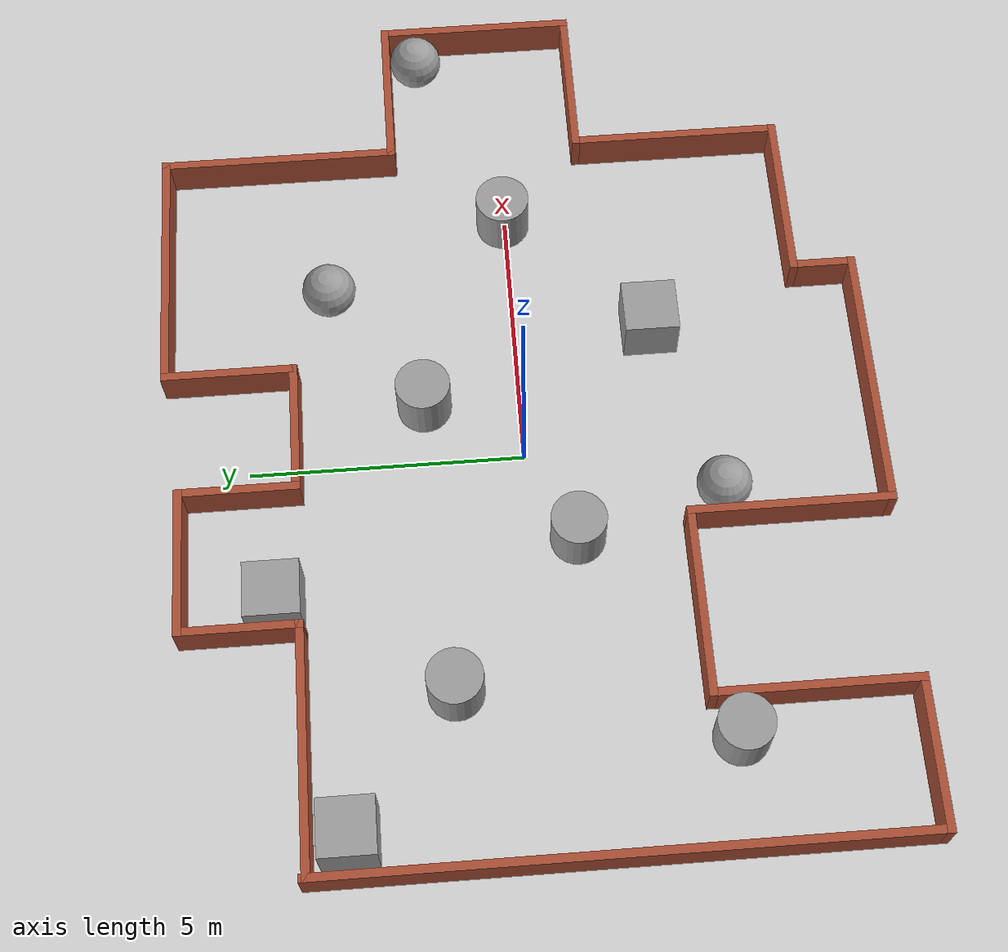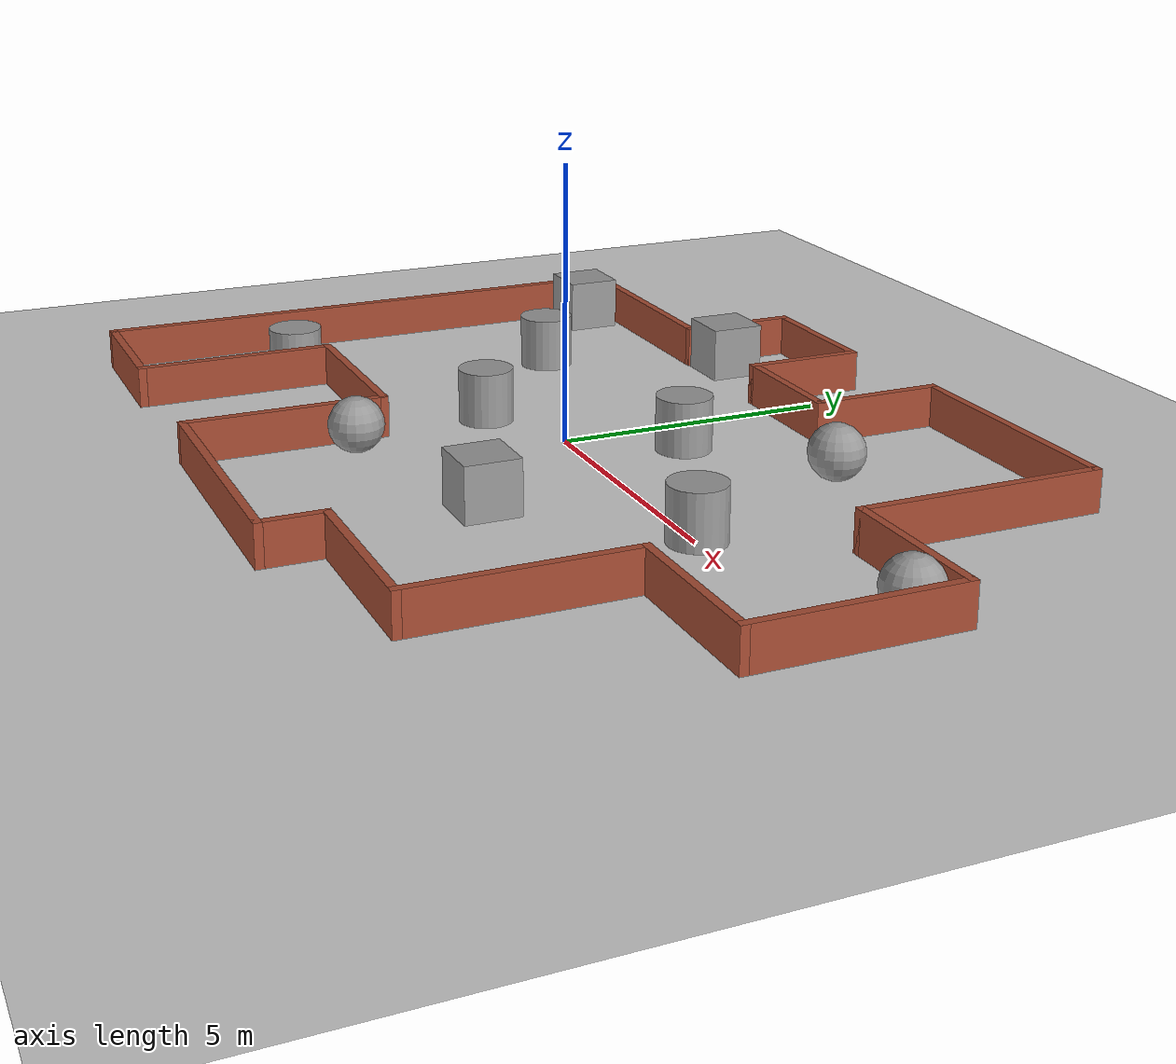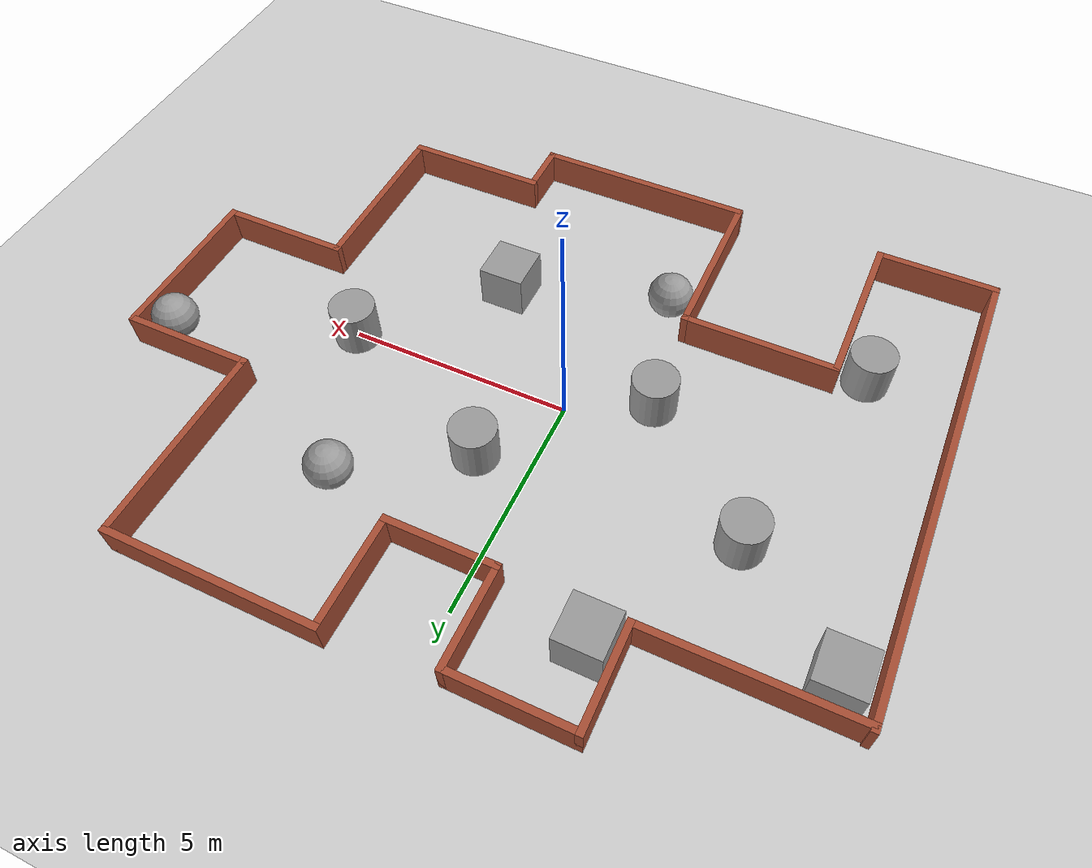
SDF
<sdf version="1.6">
 <world name="default">
  <light name="sun" type="directional">
   <pose>0 0 10 0 -0 0</pose>
   <diffuse>0.8 0.8 0.8 1</diffuse>
   <specular>0.2 0.2 0.2 1</specular>
   <attenuation>
    <range>1000</range>
    <constant>0.9</constant>
    <linear>0.01</linear>
    <quadratic>0.001</quadratic>
   </attenuation>
   <direction>-0.5 0.1 -0.9</direction>
   <spot><inner_angle>0</inner_angle><outer_angle>0</outer_angle><falloff>0</falloff></spot>
  </light>
  <model name="ground_plane">
   <static>1</static>
   <link name="link">
    <collision name="collision">
     <geometry><plane><normal>0 0 1</normal><size>100 100</size></plane></geometry>
     <surface>
      <contact><collide_bitmask>65535</collide_bitmask></contact>
      <friction><ode><mu>100</mu><mu2>50</mu2></ode></friction>
     </surface>
    </collision>
    <visual name="visual">
     <cast_shadows>0</cast_shadows>
     <geometry><plane><normal>0 0 1</normal><size>100 100</size></plane></geometry>
     <material>
      <script><uri>file://media/materials/scripts/gazebo.material</uri><name>Gazebo/Grey</name></script>
     </material>
    </visual>
   </link>
  </model>
  <gravity>0 0 -9.8</gravity>
  <magnetic_field>6e-06 2.3e-05 -4.2e-05</magnetic_field>
  <atmosphere type="adiabatic"/>
  <physics type="ode">
   <max_step_size>0.001</max_step_size>
   <real_time_factor>1</real_time_factor>
   <real_time_update_rate>1000</real_time_update_rate>
  </physics>
  <scene><ambient>0.4 0.4 0.4 1</ambient><background>0.7 0.7 0.7 1</background><shadows>1</shadows></scene>
  <spherical_coordinates>
   <surface_model>EARTH_WGS84</surface_model>
   <latitude_deg>0</latitude_deg>
   <longitude_deg>0</longitude_deg>
   <elevation>0</elevation>
   <heading_deg>0</heading_deg>
  </spherical_coordinates>
  <model name="Untitled">
   <pose>0.856 0.011 0 0 -0 0</pose>
   <link name="Wall_23">
    <collision name="Wall_23_Collision">
     <geometry><box><size>4.5 0.15 0.75</size></box></geometry>
     <pose>0 0 0.375 0 -0 0</pose>
    </collision>
    <visual name="Wall_23_Visual">
     <pose>0 0 0.375 0 -0 0</pose>
     <geometry><box><size>4.5 0.15 0.75</size></box></geometry>
     <material>
      <script><uri>file://media/materials/scripts/gazebo.material</uri><name>Gazebo/Bricks</name></script>
      <ambient>1 1 1 1</ambient>
     </material>
     <meta><layer>0</layer></meta>
    </visual>
    <pose>-6.2 4.1 0 0 -0 0</pose>
   </link>
   <link name="Wall_26">
    <collision name="Wall_26_Collision">
     <geometry><box><size>2.25 0.15 0.75</size></box></geometry>
     <pose>0 0 0.375 0 -0 0</pose>
    </collision>
    <visual name="Wall_26_Visual">
     <pose>0 0 0.375 0 -0 0</pose>
     <geometry><box><size>2.25 0.15 0.75</size></box></geometry>
     <material>
      <script><uri>file://media/materials/scripts/gazebo.material</uri><name>Gazebo/Bricks</name></script>
      <ambient>1 1 1 1</ambient>
     </material>
     <meta><layer>0</layer></meta>
    </visual>
    <pose>-4.025 5.15 0 0 -0 1.5708</pose>
   </link>
   <link name="Wall_27">
    <collision name="Wall_27_Collision">
     <geometry><box><size>2.75 0.15 0.75</size></box></geometry>
     <pose>0 0 0.375 0 -0 0</pose>
    </collision>
    <visual name="Wall_27_Visual">
     <pose>0 0 0.375 0 -0 0</pose>
     <geometry><box><size>2.75 0.15 0.75</size></box></geometry>
     <material>
      <script><uri>file://media/materials/scripts/gazebo.material</uri><name>Gazebo/Bricks</name></script>
      <ambient>1 1 1 1</ambient>
     </material>
     <meta><layer>0</layer></meta>
    </visual>
    <pose>-2.725 6.2 0 0 -0 0</pose>
   </link>
   <link name="Wall_28">
    <collision name="Wall_28_Collision">
     <geometry><box><size>2.25 0.15 0.75</size></box></geometry>
     <pose>0 0 0.375 0 -0 0</pose>
    </collision>
    <visual name="Wall_28_Visual">
     <pose>0 0 0.375 0 -0 0</pose>
     <geometry><box><size>2.25 0.15 0.75</size></box></geometry>
     <material>
      <script><uri>file://media/materials/scripts/gazebo.material</uri><name>Gazebo/Bricks</name></script>
      <ambient>1 1 1 1</ambient>
     </material>
     <meta><layer>0</layer></meta>
    </visual>
    <pose>-1.425 5.15 0 0 -0 -1.5708</pose>
   </link>
   <link name="Wall_29">
    <collision name="Wall_29_Collision">
     <geometry><box><size>2.5 0.15 0.75</size></box></geometry>
     <pose>0 0 0.375 0 -0 0</pose>
    </collision>
    <visual name="Wall_29_Visual">
     <pose>0 0 0.375 0 -0 0</pose>
     <geometry><box><size>2.5 0.15 0.75</size></box></geometry>
     <material>
      <script><uri>file://media/materials/scripts/gazebo.material</uri><name>Gazebo/Bricks</name></script>
      <ambient>1 1 1 1</ambient>
     </material>
     <meta><layer>0</layer></meta>
    </visual>
    <pose>-0.249999 4.1 0 0 -0 0</pose>
   </link>
   <link name="Wall_30">
    <collision name="Wall_30_Collision">
     <geometry><box><size>2.5 0.15 0.75</size></box></geometry>
     <pose>0 0 0.375 0 -0 0</pose>
    </collision>
    <visual name="Wall_30_Visual">
     <pose>0 0 0.375 0 -0 0</pose>
     <geometry><box><size>2.5 0.15 0.75</size></box></geometry>
     <material>
      <script><uri>file://media/materials/scripts/gazebo.material</uri><name>Gazebo/Bricks</name></script>
      <ambient>1 1 1 1</ambient>
     </material>
     <meta><layer>0</layer></meta>
    </visual>
    <pose>0.925001 5.275 0 0 -0 1.5708</pose>
   </link>
   <link name="Wall_31">
    <collision name="Wall_31_Collision">
     <geometry><box><size>4.75 0.15 0.75</size></box></geometry>
     <pose>0 0 0.375 0 -0 0</pose>
    </collision>
    <visual name="Wall_31_Visual">
     <pose>0 0 0.375 0 -0 0</pose>
     <geometry><box><size>4.75 0.15 0.75</size></box></geometry>
     <material>
      <script><uri>file://media/materials/scripts/gazebo.material</uri><name>Gazebo/Bricks</name></script>
      <ambient>1 1 1 1</ambient>
     </material>
     <meta><layer>0</layer></meta>
    </visual>
    <pose>3.225 6.45 0 0 -0 0</pose>
   </link>
   <link name="Wall_32">
    <collision name="Wall_32_Collision">
     <geometry><box><size>4.5 0.15 0.75</size></box></geometry>
     <pose>0 0 0.375 0 -0 0</pose>
    </collision>
    <visual name="Wall_32_Visual">
     <pose>0 0 0.375 0 -0 0</pose>
     <geometry><box><size>4.5 0.15 0.75</size></box></geometry>
     <material>
      <script><uri>file://media/materials/scripts/gazebo.material</uri><name>Gazebo/Bricks</name></script>
      <ambient>1 1 1 1</ambient>
     </material>
     <meta><layer>0</layer></meta>
    </visual>
    <pose>5.525 4.275 0 0 -0 -1.5708</pose>
   </link>
   <link name="Wall_33">
    <collision name="Wall_33_Collision">
     <geometry><box><size>3 0.15 0.75</size></box></geometry>
     <pose>0 0 0.375 0 -0 0</pose>
    </collision>
    <visual name="Wall_33_Visual">
     <pose>0 0 0.375 0 -0 0</pose>
     <geometry><box><size>3 0.15 0.75</size></box></geometry>
     <material>
      <script><uri>file://media/materials/scripts/gazebo.material</uri><name>Gazebo/Bricks</name></script>
      <ambient>1 1 1 1</ambient>
     </material>
     <meta><layer>0</layer></meta>
    </visual>
    <pose>6.95 2.1 0 0 -0 0</pose>
   </link>
   <link name="Wall_34">
    <collision name="Wall_34_Collision">
     <geometry><box><size>3.75 0.15 0.75</size></box></geometry>
     <pose>0 0 0.375 0 -0 0</pose>
    </collision>
    <visual name="Wall_34_Visual">
     <pose>0 0 0.375 0 -0 0</pose>
     <geometry><box><size>3.75 0.15 0.75</size></box></geometry>
     <material>
      <script><uri>file://media/materials/scripts/gazebo.material</uri><name>Gazebo/Bricks</name></script>
      <ambient>1 1 1 1</ambient>
     </material>
     <meta><layer>0</layer></meta>
    </visual>
    <pose>8.375 0.3 0 0 -0 -1.5708</pose>
   </link>
   <link name="Wall_35">
    <collision name="Wall_35_Collision">
     <geometry><box><size>3 0.15 0.75</size></box></geometry>
     <pose>0 0 0.375 0 -0 0</pose>
    </collision>
    <visual name="Wall_35_Visual">
     <pose>0 0 0.375 0 -0 0</pose>
     <geometry><box><size>3 0.15 0.75</size></box></geometry>
     <material>
      <script><uri>file://media/materials/scripts/gazebo.material</uri><name>Gazebo/Bricks</name></script>
      <ambient>1 1 1 1</ambient>
     </material>
     <meta><layer>0</layer></meta>
    </visual>
    <pose>6.95 -1.5 0 0 -0 3.14159</pose>
   </link>
   <link name="Wall_36">
    <collision name="Wall_36_Collision">
     <geometry><box><size>4 0.15 0.75</size></box></geometry>
     <pose>0 0 0.375 0 -0 0</pose>
    </collision>
    <visual name="Wall_36_Visual">
     <pose>0 0 0.375 0 -0 0</pose>
     <geometry><box><size>4 0.15 0.75</size></box></geometry>
     <material>
      <script><uri>file://media/materials/scripts/gazebo.material</uri><name>Gazebo/Bricks</name></script>
      <ambient>1 1 1 1</ambient>
     </material>
     <meta><layer>0</layer></meta>
    </visual>
    <pose>5.525 -3.425 0 0 -0 -1.5708</pose>
   </link>
   <link name="Wall_37">
    <collision name="Wall_37_Collision">
     <geometry><box><size>3.25 0.15 0.75</size></box></geometry>
     <pose>0 0 0.375 0 -0 0</pose>
    </collision>
    <visual name="Wall_37_Visual">
     <pose>0 0 0.375 0 -0 0</pose>
     <geometry><box><size>3.25 0.15 0.75</size></box></geometry>
     <material>
      <script><uri>file://media/materials/scripts/gazebo.material</uri><name>Gazebo/Bricks</name></script>
      <ambient>1 1 1 1</ambient>
     </material>
     <meta><layer>0</layer></meta>
    </visual>
    <pose>3.975 -5.35 0 0 -0 3.14159</pose>
   </link>
   <link name="Wall_38">
    <collision name="Wall_38_Collision">
     <geometry><box><size>1.25 0.15 0.75</size></box></geometry>
     <pose>0 0 0.375 0 -0 0</pose>
    </collision>
    <visual name="Wall_38_Visual">
     <pose>0 0 0.375 0 -0 0</pose>
     <geometry><box><size>1.25 0.15 0.75</size></box></geometry>
     <material>
      <script><uri>file://media/materials/scripts/gazebo.material</uri><name>Gazebo/Bricks</name></script>
      <ambient>1 1 1 1</ambient>
     </material>
     <meta><layer>0</layer></meta>
    </visual>
    <pose>2.425 -5.9 0 0 -0 -1.5708</pose>
   </link>
   <link name="Wall_39">
    <collision name="Wall_39_Collision">
     <geometry><box><size>5 0.15 0.75</size></box></geometry>
     <pose>0 0 0.375 0 -0 0</pose>
    </collision>
    <visual name="Wall_39_Visual">
     <pose>0 0 0.375 0 -0 0</pose>
     <geometry><box><size>5 0.15 0.75</size></box></geometry>
     <material>
      <script><uri>file://media/materials/scripts/gazebo.material</uri><name>Gazebo/Bricks</name></script>
      <ambient>1 1 1 1</ambient>
     </material>
     <meta><layer>0</layer></meta>
    </visual>
    <pose>1e-06 -6.45 0 0 -0 3.14159</pose>
   </link>
   <link name="Wall_40">
    <collision name="Wall_40_Collision">
     <geometry><box><size>3.75 0.15 0.75</size></box></geometry>
     <pose>0 0 0.375 0 -0 0</pose>
    </collision>
    <visual name="Wall_40_Visual">
     <pose>0 0 0.375 0 -0 0</pose>
     <geometry><box><size>3.75 0.15 0.75</size></box></geometry>
     <material>
      <script><uri>file://media/materials/scripts/gazebo.material</uri><name>Gazebo/Bricks</name></script>
      <ambient>1 1 1 1</ambient>
     </material>
     <meta><layer>0</layer></meta>
    </visual>
    <pose>-2.425 -4.65 0 0 -0 1.5708</pose>
   </link>
   <link name="Wall_41">
    <collision name="Wall_41_Collision">
     <geometry><box><size>3.5 0.15 0.75</size></box></geometry>
     <pose>0 0 0.375 0 -0 0</pose>
    </collision>
    <visual name="Wall_41_Visual">
     <pose>0 0 0.375 0 -0 0</pose>
     <geometry><box><size>3.5 0.15 0.75</size></box></geometry>
     <material>
      <script><uri>file://media/materials/scripts/gazebo.material</uri><name>Gazebo/Bricks</name></script>
      <ambient>1 1 1 1</ambient>
     </material>
     <meta><layer>0</layer></meta>
    </visual>
    <pose>-4.1 -2.85 0 0 -0 3.14159</pose>
   </link>
   <link name="Wall_42">
    <collision name="Wall_42_Collision">
     <geometry><box><size>3.75 0.15 0.75</size></box></geometry>
     <pose>0 0 0.375 0 -0 0</pose>
    </collision>
    <visual name="Wall_42_Visual">
     <pose>0 0 0.375 0 -0 0</pose>
     <geometry><box><size>3.75 0.15 0.75</size></box></geometry>
     <material>
      <script><uri>file://media/materials/scripts/gazebo.material</uri><name>Gazebo/Bricks</name></script>
      <ambient>1 1 1 1</ambient>
     </material>
     <meta><layer>0</layer></meta>
    </visual>
    <pose>-5.775 -4.65 0 0 -0 -1.5708</pose>
   </link>
   <link name="Wall_43">
    <collision name="Wall_43_Collision">
     <geometry><box><size>2.75 0.15 0.75</size></box></geometry>
     <pose>0 0 0.375 0 -0 0</pose>
    </collision>
    <visual name="Wall_43_Visual">
     <pose>0 0 0.375 0 -0 0</pose>
     <geometry><box><size>2.75 0.15 0.75</size></box></geometry>
     <material>
      <script><uri>file://media/materials/scripts/gazebo.material</uri><name>Gazebo/Bricks</name></script>
      <ambient>1 1 1 1</ambient>
     </material>
     <meta><layer>0</layer></meta>
    </visual>
    <pose>-7.075 -6.45 0 0 -0 3.14159</pose>
   </link>
   <link name="Wall_44">
    <collision name="Wall_44_Collision">
     <geometry><box><size>10.75 0.15 0.75</size></box></geometry>
     <pose>0 0 0.375 0 -0 0</pose>
    </collision>
    <visual name="Wall_44_Visual">
     <pose>0 0 0.375 0 -0 0</pose>
     <geometry><box><size>10.75 0.15 0.75</size></box></geometry>
     <material>
      <script><uri>file://media/materials/scripts/gazebo.material</uri><name>Gazebo/Bricks</name></script>
      <ambient>1 1 1 1</ambient>
     </material>
     <meta><layer>0</layer></meta>
    </visual>
    <pose>-8.375 -1.15 0 0 -0 1.5708</pose>
   </link>
   <static>1</static>
  </model>
  <model name="unit_box">
   <pose>-2.56252 4.5653 0.499995 0 1e-05 0</pose>
   <link name="link">
    <inertial>
     <mass>1</mass>
     <inertia>
      <ixx>0.166667</ixx>
      <ixy>0</ixy>
      <ixz>0</ixz>
      <iyy>0.166667</iyy>
      <iyz>0</iyz>
      <izz>0.166667</izz>
     </inertia>
    </inertial>
    <collision name="collision"><geometry><box><size>1 1 1</size></box></geometry></collision>
    <visual name="visual">
     <geometry><box><size>1 1 1</size></box></geometry>
     <material>
      <script><name>Gazebo/Grey</name><uri>file://media/materials/scripts/gazebo.material</uri></script>
     </material>
    </visual>
   </link>
  </model>
  <model name="unit_sphere">
   <pose>-0.987672 -3.53038 0.5 -1e-06 0.012849 0</pose>
   <link name="link">
    <inertial>
     <mass>1</mass>
     <inertia><ixx>0.1</ixx><ixy>0</ixy><ixz>0</ixz><iyy>0.1</iyy><iyz>0</iyz><izz>0.1</izz></inertia>
    </inertial>
    <collision name="collision"><geometry><sphere><radius>0.5</radius></sphere></geometry></collision>
    <visual name="visual">
     <geometry><sphere><radius>0.5</radius></sphere></geometry>
     <material>
      <script><name>Gazebo/Grey</name><uri>file://media/materials/scripts/gazebo.material</uri></script>
     </material>
    </visual>
   </link>
  </model>
  <model name="unit_cylinder">
   <pose>1.15556 1.75918 0.499992 -3e-06 3e-06 0</pose>
   <link name="link">
    <inertial>
     <mass>1</mass>
     <inertia><ixx>0.145833</ixx><ixy>0</ixy><ixz>0</ixz><iyy>0.145833</iyy><iyz>0</iyz><izz>0.125</izz></inertia>
    </inertial>
    <collision name="collision">
     <geometry><cylinder><radius>0.5</radius><length>1</length></cylinder></geometry>
    </collision>
    <visual name="visual">
     <geometry><cylinder><radius>0.5</radius><length>1</length></cylinder></geometry>
     <material>
      <script><name>Gazebo/Grey</name><uri>file://media/materials/scripts/gazebo.material</uri></script>
     </material>
    </visual>
   </link>
  </model>
  <model name="unit_cylinder_0">
   <pose>-5.53709 -3.30587 0.499998 3e-06 -3e-06 0</pose>
   <link name="link">
    <inertial>
     <mass>1</mass>
     <inertia><ixx>0.145833</ixx><ixy>0</ixy><ixz>0</ixz><iyy>0.145833</iyy><iyz>0</iyz><izz>0.125</izz></inertia>
    </inertial>
    <collision name="collision">
     <geometry><cylinder><radius>0.5</radius><length>1</length></cylinder></geometry>
    </collision>
    <visual name="visual">
     <geometry><cylinder><radius>0.5</radius><length>1</length></cylinder></geometry>
     <material>
      <script><name>Gazebo/Grey</name><uri>file://media/materials/scripts/gazebo.material</uri></script>
     </material>
    </visual>
   </link>
  </model>
  <model name="unit_box_0">
   <pose>-6.78578 3.41478 0.499995 0 1e-05 0</pose>
   <link name="link">
    <inertial>
     <mass>1</mass>
     <inertia>
      <ixx>0.166667</ixx>
      <ixy>0</ixy>
      <ixz>0</ixz>
      <iyy>0.166667</iyy>
      <iyz>0</iyz>
      <izz>0.166667</izz>
     </inertia>
    </inertial>
    <collision name="collision"><geometry><box><size>1 1 1</size></box></geometry></collision>
    <visual name="visual">
     <geometry><box><size>1 1 1</size></box></geometry>
     <material>
      <script><name>Gazebo/Grey</name><uri>file://media/materials/scripts/gazebo.material</uri></script>
     </material>
    </visual>
   </link>
  </model>
  <model name="unit_sphere_0">
   <pose>8.656 1.536 0.5 0.017251 -0.005741 0.019709</pose>
   <link name="link">
    <inertial>
     <mass>1</mass>
     <inertia><ixx>0.1</ixx><ixy>0</ixy><ixz>0</ixz><iyy>0.1</iyy><iyz>0</iyz><izz>0.1</izz></inertia>
    </inertial>
    <collision name="collision"><geometry><sphere><radius>0.5</radius></sphere></geometry></collision>
    <visual name="visual">
     <geometry><sphere><radius>0.5</radius></sphere></geometry>
     <material>
      <script><name>Gazebo/Grey</name><uri>file://media/materials/scripts/gazebo.material</uri></script>
     </material>
    </visual>
   </link>
  </model>
  <model name="unit_cylinder_1">
   <pose>-1.66556 -0.844098 0.499992 -4e-06 4e-06 0</pose>
   <link name="link">
    <inertial>
     <mass>1</mass>
     <inertia><ixx>0.145833</ixx><ixy>0</ixy><ixz>0</ixz><iyy>0.145833</iyy><iyz>0</iyz><izz>0.125</izz></inertia>
    </inertial>
    <collision name="collision">
     <geometry><cylinder><radius>0.5</radius><length>1</length></cylinder></geometry>
    </collision>
    <visual name="visual">
     <geometry><cylinder><radius>0.5</radius><length>1</length></cylinder></geometry>
     <material>
      <script><name>Gazebo/Grey</name><uri>file://media/materials/scripts/gazebo.material</uri></script>
     </material>
    </visual>
   </link>
  </model>
  <model name="unit_box_1">
   <pose>2.47345 -2.52778 0.499995 -1e-05 -0 -5e-06</pose>
   <link name="link">
    <inertial>
     <mass>1</mass>
     <inertia>
      <ixx>0.166667</ixx>
      <ixy>0</ixy>
      <ixz>0</ixz>
      <iyy>0.166667</iyy>
      <iyz>0</iyz>
      <izz>0.166667</izz>
     </inertia>
    </inertial>
    <collision name="collision"><geometry><box><size>1 1 1</size></box></geometry></collision>
    <visual name="visual">
     <geometry><box><size>1 1 1</size></box></geometry>
     <material>
      <script><name>Gazebo/Grey</name><uri>file://media/materials/scripts/gazebo.material</uri></script>
     </material>
    </visual>
   </link>
  </model>
  <model name="unit_sphere_1">
   <pose>3.51177 3.4212 0.5 0 -0 0</pose>
   <link name="link">
    <inertial>
     <mass>1</mass>
     <inertia><ixx>0.1</ixx><ixy>0</ixy><ixz>0</ixz><iyy>0.1</iyy><iyz>0</iyz><izz>0.1</izz></inertia>
    </inertial>
    <collision name="collision"><geometry><sphere><radius>0.5</radius></sphere></geometry></collision>
    <visual name="visual">
     <geometry><sphere><radius>0.5</radius></sphere></geometry>
     <material>
      <script><name>Gazebo/Grey</name><uri>file://media/materials/scripts/gazebo.material</uri></script>
     </material>
    </visual>
   </link>
  </model>
  <model name="unit_cylinder_2">
   <pose>-4.38389 1.50255 0.499993 -3e-06 -4e-06 -0</pose>
   <link name="link">
    <inertial>
     <mass>1</mass>
     <inertia><ixx>0.145833</ixx><ixy>0</ixy><ixz>0</ixz><iyy>0.145833</iyy><iyz>0</iyz><izz>0.125</izz></inertia>
    </inertial>
    <collision name="collision">
     <geometry><cylinder><radius>0.5</radius><length>1</length></cylinder></geometry>
    </collision>
    <visual name="visual">
     <geometry><cylinder><radius>0.5</radius><length>1</length></cylinder></geometry>
     <material>
      <script><name>Gazebo/Grey</name><uri>file://media/materials/scripts/gazebo.material</uri></script>
     </material>
    </visual>
   </link>
  </model>
  <model name="unit_cylinder_3">
   <pose>4.98831 0.041602 0.499997 3e-06 4e-06 -0</pose>
   <link name="link">
    <inertial>
     <mass>1</mass>
     <inertia><ixx>0.145833</ixx><ixy>0</ixy><ixz>0</ixz><iyy>0.145833</iyy><iyz>0</iyz><izz>0.125</izz></inertia>
    </inertial>
    <collision name="collision">
     <geometry><cylinder><radius>0.5</radius><length>1</length></cylinder></geometry>
    </collision>
    <visual name="visual">
     <geometry><cylinder><radius>0.5</radius><length>1</length></cylinder></geometry>
     <material>
      <script><name>Gazebo/Grey</name><uri>file://media/materials/scripts/gazebo.material</uri></script>
     </material>
    </visual>
   </link>
  </model>
 </world>
</sdf>
